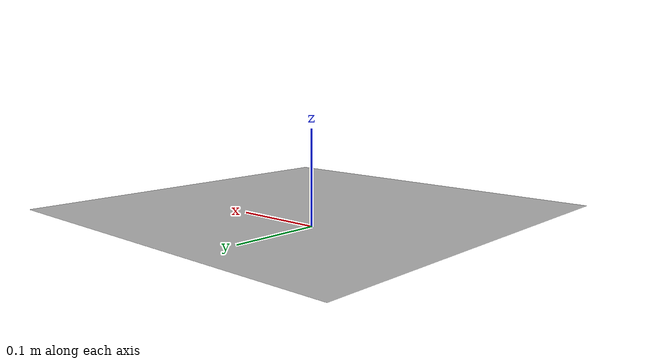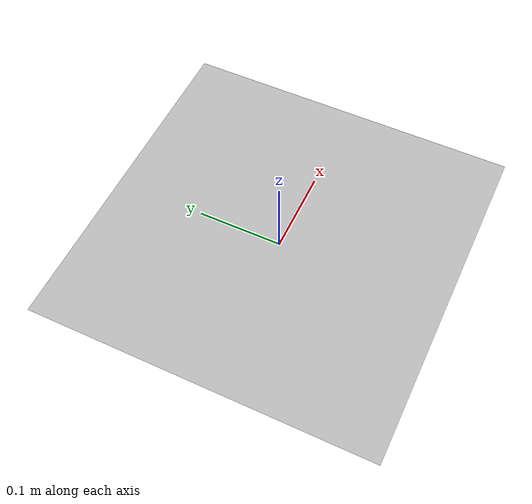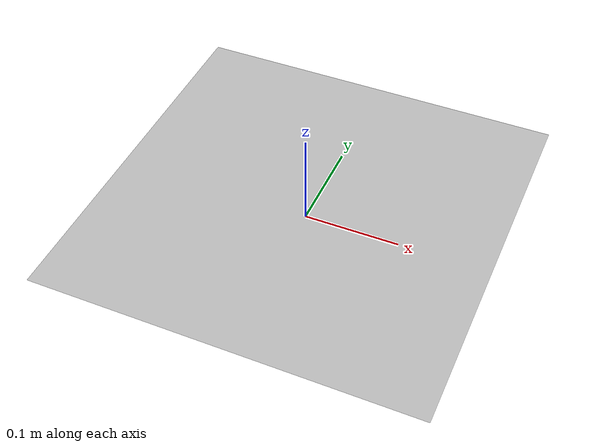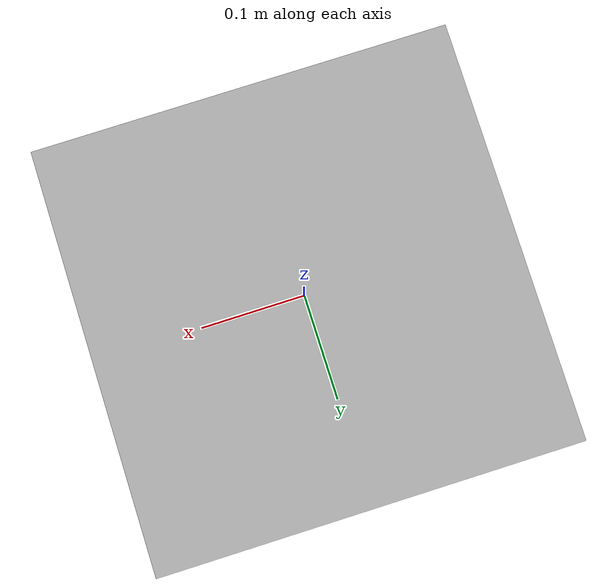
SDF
<?xml version='1.0'?>
<sdf version="1.6">
<model name="checkerboard_plane">
  <static>true</static>
    <link name="link">
      <visual name="visual">
        <geometry>
          <mesh>
            <uri>model://checkerboard_plane/meshes/checkerboard_plane.dae</uri>
          </mesh>
        </geometry>
      </visual>
    </link>
  </model>
</sdf>
